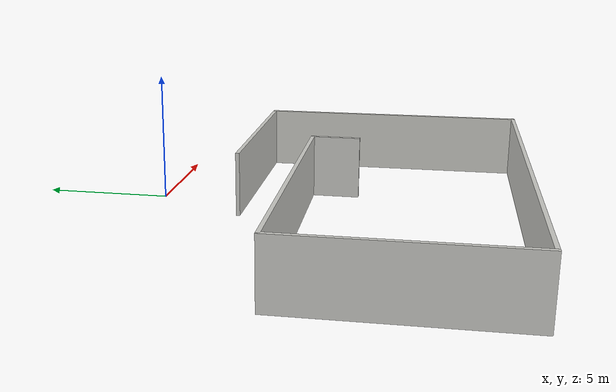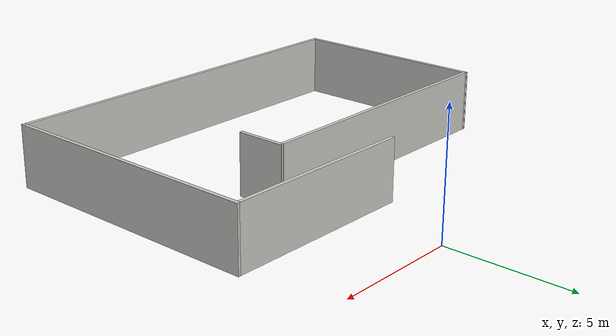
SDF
<?xml version='1.0'?>
<sdf version='1.6'>
  <model name='world'>
    <pose frame=''>-2.03244 -8.87571 0 0 -0 0</pose>
    <link name='Wall_32'>
      <collision name='Wall_32_Collision'>
        <geometry>
          <box>
            <size>7.87393 0.15 2.5</size>
          </box>
        </geometry>
        <pose frame=''>0 0 1.25 0 -0 0</pose>
      </collision>
      <visual name='Wall_32_Visual'>
        <pose frame=''>0 0 1.25 0 -0 0</pose>
        <geometry>
          <box>
            <size>7.87393 0.15 2.5</size>
          </box>
        </geometry>
        <material>
          <script>
            <uri>file://media/materials/scripts/gazebo.material</uri>
            <name>Gazebo/CeilingTiled</name>
          </script>
          <ambient>1 1 1 1</ambient>
        </material>
        <meta>
          <layer>0</layer>
        </meta>
      </visual>
      <pose frame=''>4.14305 5.37764 0 0 -0 -0.005822</pose>
    </link>
    <link name='Wall_33'>
      <collision name='Wall_33_Collision'>
        <geometry>
          <box>
            <size>10.9051 0.15 2.5</size>
          </box>
        </geometry>
        <pose frame=''>0 0 1.25 0 -0 0</pose>
      </collision>
      <visual name='Wall_33_Visual'>
        <pose frame=''>0 0 1.25 0 -0 0</pose>
        <geometry>
          <box>
            <size>10.9051 0.15 2.5</size>
          </box>
        </geometry>
        <material>
          <script>
            <uri>file://media/materials/scripts/gazebo.material</uri>
            <name>Gazebo/CeilingTiled</name>
          </script>
          <ambient>1 1 1 1</ambient>
        </material>
        <meta>
          <layer>0</layer>
        </meta>
      </visual>
      <pose frame=''>8.08827 -0.02233 0 0 -0 -1.56514</pose>
    </link>
    <link name='Wall_34'>
      <collision name='Wall_34_Collision'>
        <geometry>
          <box>
            <size>16.1775 0.15 2.5</size>
          </box>
        </geometry>
        <pose frame=''>0 0 1.25 0 -0 0</pose>
      </collision>
      <visual name='Wall_34_Visual'>
        <pose frame=''>0 0 1.25 0 -0 0</pose>
        <geometry>
          <box>
            <size>16.1775 0.15 2.5</size>
          </box>
        </geometry>
        <material>
          <script>
            <uri>file://media/materials/scripts/gazebo.material</uri>
            <name>Gazebo/CeilingTiled</name>
          </script>
          <ambient>1 1 1 1</ambient>
        </material>
        <meta>
          <layer>0</layer>
        </meta>
      </visual>
      <pose frame=''>0.052439 -5.32047 0 0 -0 3.13169</pose>
    </link>
    <link name='Wall_36'>
      <collision name='Wall_36_Collision'>
        <geometry>
          <box>
            <size>8.31806 0.15 2.5</size>
          </box>
        </geometry>
        <pose frame=''>0 0 1.25 0 -0 0</pose>
      </collision>
      <visual name='Wall_36_Visual'>
        <pose frame=''>0 0 1.25 0 -0 0</pose>
        <geometry>
          <box>
            <size>8.31806 0.15 2.5</size>
          </box>
        </geometry>
        <material>
          <script>
            <uri>file://media/materials/scripts/gazebo.material</uri>
            <name>Gazebo/CeilingTiled</name>
          </script>
          <ambient>1 1 1 1</ambient>
        </material>
        <meta>
          <layer>0</layer>
        </meta>
      </visual>
      <pose frame=''>-8.06598 -1.15742 0 0 -0 1.58357</pose>
    </link>
    <link name='Wall_38'>
      <collision name='Wall_38_Collision'>
        <geometry>
          <box>
            <size>11.5877 0.15 2.5</size>
          </box>
        </geometry>
        <pose frame=''>0 0 1.25 0 -0 0</pose>
      </collision>
      <visual name='Wall_38_Visual'>
        <pose frame=''>0 0 1.25 0 -0 0</pose>
        <geometry>
          <box>
            <size>11.5877 0.15 2.5</size>
          </box>
        </geometry>
        <material>
          <script>
            <uri>file://media/materials/scripts/gazebo.material</uri>
            <name>Gazebo/CeilingTiled</name>
          </script>
          <ambient>1 1 1 1</ambient>
        </material>
        <meta>
          <layer>0</layer>
        </meta>
      </visual>
      <pose frame=''>-2.34642 2.93461 0 0 -0 0.001457</pose>
    </link>
    <link name='Wall_40'>
      <collision name='Wall_40_Collision'>
        <geometry>
          <box>
            <size>2 0.15 2.5</size>
          </box>
        </geometry>
        <pose frame=''>0 0 1.25 0 -0 0</pose>
      </collision>
      <visual name='Wall_40_Visual'>
        <pose frame=''>0 0 1.25 0 -0 0</pose>
        <geometry>
          <box>
            <size>2 0.15 2.5</size>
          </box>
        </geometry>
        <material>
          <script>
            <uri>file://media/materials/scripts/gazebo.material</uri>
            <name>Gazebo/CeilingTiled</name>
          </script>
          <ambient>1 1 1 1</ambient>
        </material>
        <meta>
          <layer>0</layer>
        </meta>
      </visual>
      <pose frame=''>3.40721 2.01794 0 0 -0 -1.5708</pose>
    </link>
    <static>1</static>
  </model>
</sdf>
